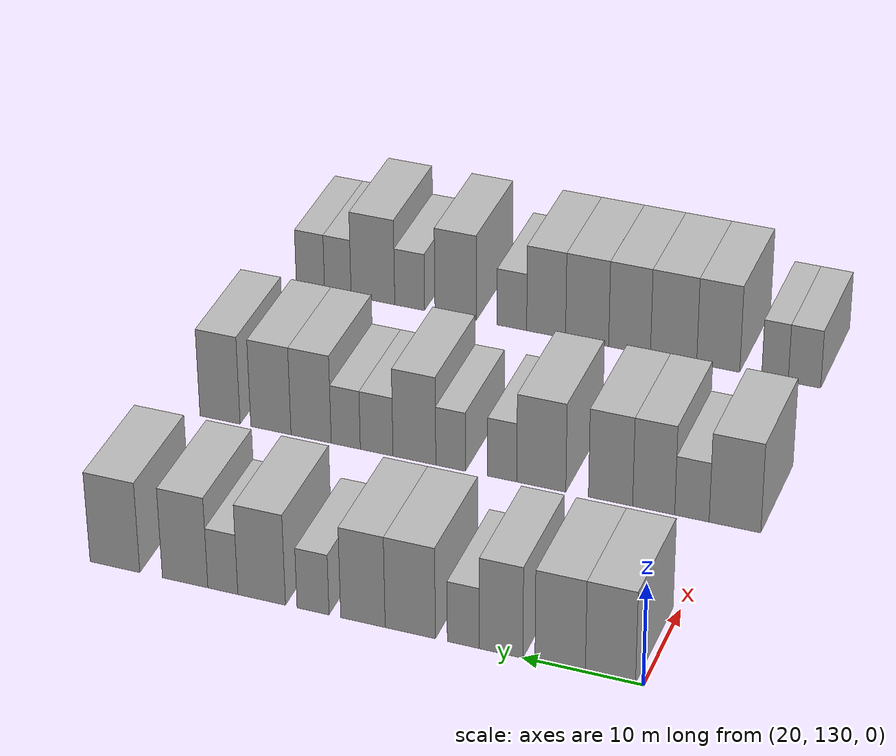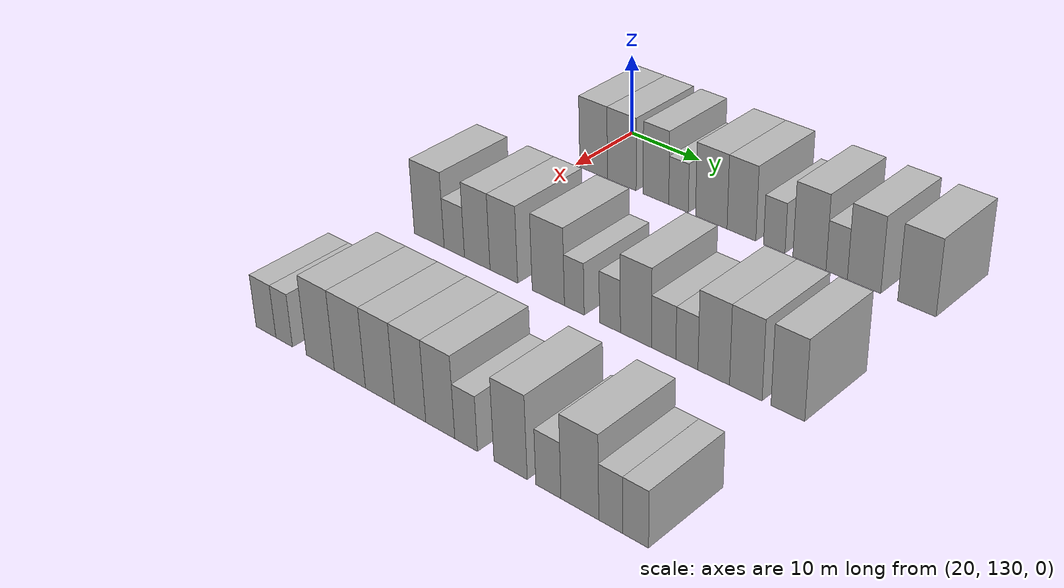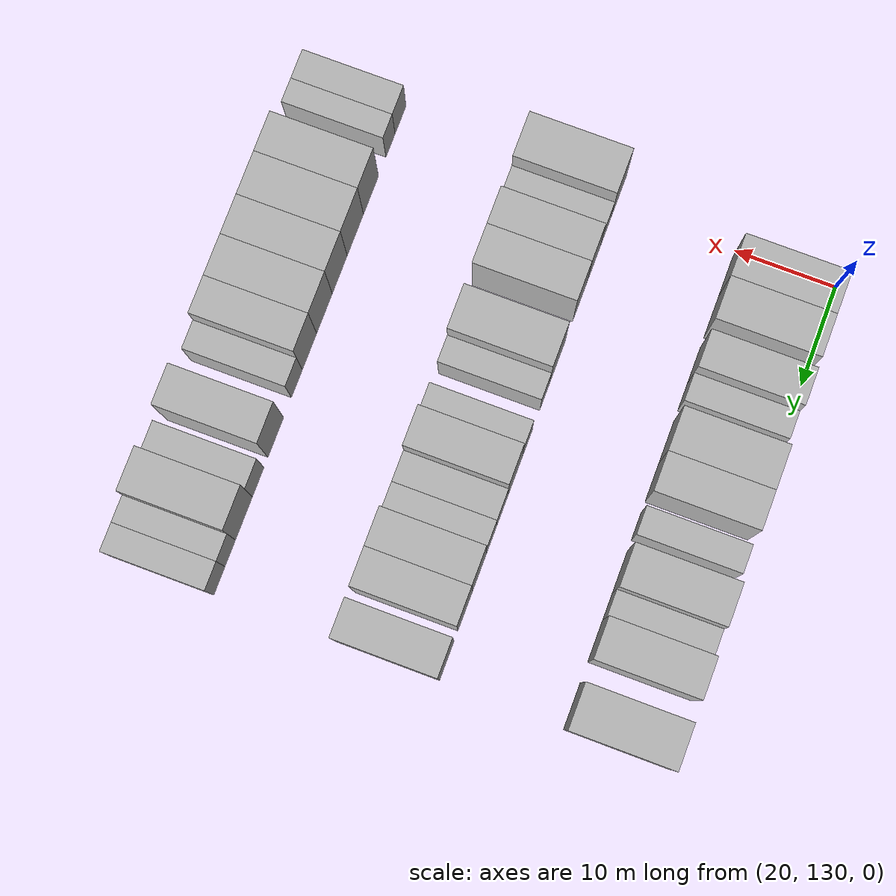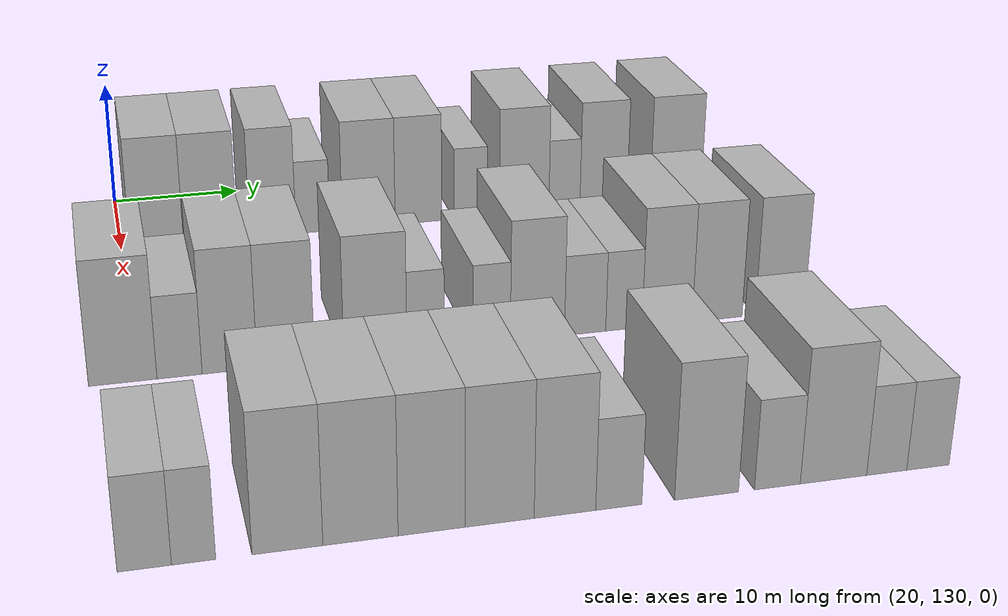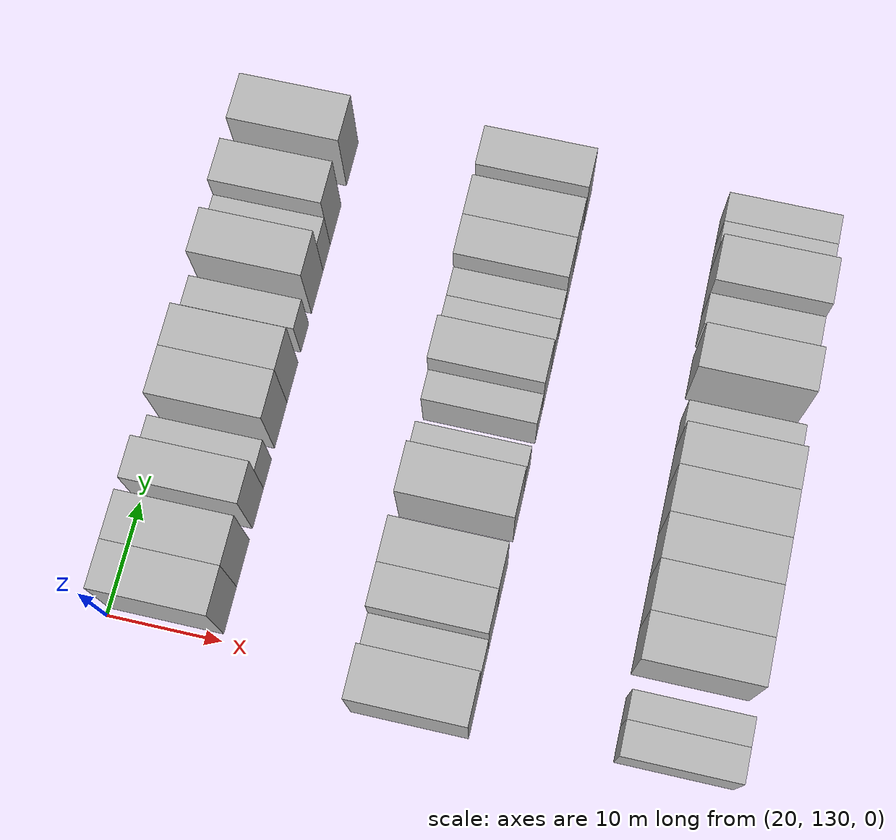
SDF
<sdf version="1.6">
 <world name="default">
  <model name="building_127">
   <static>1</static>
   <pose>25.0000 132.7111 0 0.000000 0.000000 0.000000</pose>
   <link name="link">
    <pose>0 0 4.50 0 0 0</pose>
    <collision name="collision"><geometry><box><size>10.0000 4.1137 9.0000</size></box></geometry></collision>
    <visual name="visual">
     <cast_shadows>0</cast_shadows>
     <geometry><box><size>10.0000 4.1137 9.0000</size></box></geometry>
     <material>
      <script>
       <uri>model://HANNAS_wall/materials/scripts</uri>
       <uri>model://HANNAS_wall/materials/textures</uri>
       <name>vrc/HANNAS_wall</name>
      </script>
     </material>
    </visual>
   </link>
  </model>
  <model name="building_128">
   <static>1</static>
   <pose>25.0000 136.8517 0 0.000000 0.000000 0.000000</pose>
   <link name="link">
    <pose>0 0 4.50 0 0 0</pose>
    <collision name="collision"><geometry><box><size>10.0000 4.1676 9.0000</size></box></geometry></collision>
    <visual name="visual">
     <cast_shadows>0</cast_shadows>
     <geometry><box><size>10.0000 4.1676 9.0000</size></box></geometry>
     <material>
      <script>
       <uri>model://HANNAS_wall/materials/scripts</uri>
       <uri>model://HANNAS_wall/materials/textures</uri>
       <name>vrc/HANNAS_wall</name>
      </script>
     </material>
    </visual>
   </link>
  </model>
  <model name="building_129">
   <static>1</static>
   <pose>25.0000 141.7489 0 0.000000 0.000000 0.000000</pose>
   <link name="link">
    <pose>0 0 4.50 0 0 0</pose>
    <collision name="collision"><geometry><box><size>10.0000 3.6270 9.0000</size></box></geometry></collision>
    <visual name="visual">
     <cast_shadows>0</cast_shadows>
     <geometry><box><size>10.0000 3.6270 9.0000</size></box></geometry>
     <material>
      <script>
       <uri>model://HANNAS_wall/materials/scripts</uri>
       <uri>model://HANNAS_wall/materials/textures</uri>
       <name>vrc/HANNAS_wall</name>
      </script>
     </material>
    </visual>
   </link>
  </model>
  <model name="building_130">
   <static>1</static>
   <pose>25.0000 144.9116 0 0.000000 0.000000 0.000000</pose>
   <link name="link">
    <pose>0 0 3.00 0 0 0</pose>
    <collision name="collision"><geometry><box><size>10.0000 2.6984 6.0000</size></box></geometry></collision>
    <visual name="visual">
     <cast_shadows>0</cast_shadows>
     <geometry><box><size>10.0000 2.6984 6.0000</size></box></geometry>
     <material>
      <script>
       <uri>model://HANNAS_wall/materials/scripts</uri>
       <uri>model://HANNAS_wall/materials/textures</uri>
       <name>vrc/HANNAS_wall</name>
      </script>
     </material>
    </visual>
   </link>
  </model>
  <model name="building_131">
   <static>1</static>
   <pose>25.0000 149.3931 0 0.000000 0.000000 0.000000</pose>
   <link name="link">
    <pose>0 0 4.50 0 0 0</pose>
    <collision name="collision"><geometry><box><size>10.0000 4.2646 9.0000</size></box></geometry></collision>
    <visual name="visual">
     <cast_shadows>0</cast_shadows>
     <geometry><box><size>10.0000 4.2646 9.0000</size></box></geometry>
     <material>
      <script>
       <uri>model://HANNAS_wall/materials/scripts</uri>
       <uri>model://HANNAS_wall/materials/textures</uri>
       <name>vrc/HANNAS_wall</name>
      </script>
     </material>
    </visual>
   </link>
  </model>
  <model name="building_132">
   <static>1</static>
   <pose>25.0000 153.4267 0 0.000000 0.000000 0.000000</pose>
   <link name="link">
    <pose>0 0 4.50 0 0 0</pose>
    <collision name="collision"><geometry><box><size>10.0000 3.8026 9.0000</size></box></geometry></collision>
    <visual name="visual">
     <cast_shadows>0</cast_shadows>
     <geometry><box><size>10.0000 3.8026 9.0000</size></box></geometry>
     <material>
      <script>
       <uri>model://HANNAS_wall/materials/scripts</uri>
       <uri>model://HANNAS_wall/materials/textures</uri>
       <name>vrc/HANNAS_wall</name>
      </script>
     </material>
    </visual>
   </link>
  </model>
  <model name="building_133">
   <static>1</static>
   <pose>25.0000 157.7071 0 0.000000 0.000000 0.000000</pose>
   <link name="link">
    <pose>0 0 3.00 0 0 0</pose>
    <collision name="collision"><geometry><box><size>10.0000 2.7583 6.0000</size></box></geometry></collision>
    <visual name="visual">
     <cast_shadows>0</cast_shadows>
     <geometry><box><size>10.0000 2.7583 6.0000</size></box></geometry>
     <material>
      <script>
       <uri>model://HANNAS_wall/materials/scripts</uri>
       <uri>model://HANNAS_wall/materials/textures</uri>
       <name>vrc/HANNAS_wall</name>
      </script>
     </material>
    </visual>
   </link>
  </model>
  <model name="building_134">
   <static>1</static>
   <pose>25.0000 162.1594 0 0.000000 0.000000 0.000000</pose>
   <link name="link">
    <pose>0 0 4.50 0 0 0</pose>
    <collision name="collision"><geometry><box><size>10.0000 4.1462 9.0000</size></box></geometry></collision>
    <visual name="visual">
     <cast_shadows>0</cast_shadows>
     <geometry><box><size>10.0000 4.1462 9.0000</size></box></geometry>
     <material>
      <script>
       <uri>model://HANNAS_wall/materials/scripts</uri>
       <uri>model://HANNAS_wall/materials/textures</uri>
       <name>vrc/HANNAS_wall</name>
      </script>
     </material>
    </visual>
   </link>
  </model>
  <model name="building_135">
   <static>1</static>
   <pose>25.0000 165.5441 0 0.000000 0.000000 0.000000</pose>
   <link name="link">
    <pose>0 0 3.00 0 0 0</pose>
    <collision name="collision"><geometry><box><size>10.0000 2.6232 6.0000</size></box></geometry></collision>
    <visual name="visual">
     <cast_shadows>0</cast_shadows>
     <geometry><box><size>10.0000 2.6232 6.0000</size></box></geometry>
     <material>
      <script>
       <uri>model://HANNAS_wall/materials/scripts</uri>
       <uri>model://HANNAS_wall/materials/textures</uri>
       <name>vrc/HANNAS_wall</name>
      </script>
     </material>
    </visual>
   </link>
  </model>
  <model name="building_136">
   <static>1</static>
   <pose>25.0000 168.8602 0 0.000000 0.000000 0.000000</pose>
   <link name="link">
    <pose>0 0 4.50 0 0 0</pose>
    <collision name="collision"><geometry><box><size>10.0000 4.0091 9.0000</size></box></geometry></collision>
    <visual name="visual">
     <cast_shadows>0</cast_shadows>
     <geometry><box><size>10.0000 4.0091 9.0000</size></box></geometry>
     <material>
      <script>
       <uri>model://HANNAS_wall/materials/scripts</uri>
       <uri>model://HANNAS_wall/materials/textures</uri>
       <name>vrc/HANNAS_wall</name>
      </script>
     </material>
    </visual>
   </link>
  </model>
  <model name="building_137">
   <static>1</static>
   <pose>25.0000 175.0820 0 0.000000 0.000000 0.000000</pose>
   <link name="link">
    <pose>0 0 4.50 0 0 0</pose>
    <collision name="collision"><geometry><box><size>10.0000 4.4344 9.0000</size></box></geometry></collision>
    <visual name="visual">
     <cast_shadows>0</cast_shadows>
     <geometry><box><size>10.0000 4.4344 9.0000</size></box></geometry>
     <material>
      <script>
       <uri>model://HANNAS_wall/materials/scripts</uri>
       <uri>model://HANNAS_wall/materials/textures</uri>
       <name>vrc/HANNAS_wall</name>
      </script>
     </material>
    </visual>
   </link>
  </model>
  <model name="building_317">
   <static>1</static>
   <pose>47.0000 128.9663 0 0.000000 0.000000 0.000000</pose>
   <link name="link">
    <pose>0 0 4.50 0 0 0</pose>
    <collision name="collision"><geometry><box><size>10.0000 4.4516 9.0000</size></box></geometry></collision>
    <visual name="visual">
     <cast_shadows>0</cast_shadows>
     <geometry><box><size>10.0000 4.4516 9.0000</size></box></geometry>
     <material>
      <script>
       <uri>model://HANNAS_wall/materials/scripts</uri>
       <uri>model://HANNAS_wall/materials/textures</uri>
       <name>vrc/HANNAS_wall</name>
      </script>
     </material>
    </visual>
   </link>
  </model>
  <model name="building_318">
   <static>1</static>
   <pose>47.0000 132.6814 0 0.000000 0.000000 0.000000</pose>
   <link name="link">
    <pose>0 0 3.00 0 0 0</pose>
    <collision name="collision"><geometry><box><size>10.0000 2.9786 6.0000</size></box></geometry></collision>
    <visual name="visual">
     <cast_shadows>0</cast_shadows>
     <geometry><box><size>10.0000 2.9786 6.0000</size></box></geometry>
     <material>
      <script>
       <uri>model://HANNAS_wall/materials/scripts</uri>
       <uri>model://HANNAS_wall/materials/textures</uri>
       <name>vrc/HANNAS_wall</name>
      </script>
     </material>
    </visual>
   </link>
  </model>
  <model name="building_319">
   <static>1</static>
   <pose>47.0000 136.0028 0 0.000000 0.000000 0.000000</pose>
   <link name="link">
    <pose>0 0 4.50 0 0 0</pose>
    <collision name="collision"><geometry><box><size>10.0000 3.6643 9.0000</size></box></geometry></collision>
    <visual name="visual">
     <cast_shadows>0</cast_shadows>
     <geometry><box><size>10.0000 3.6643 9.0000</size></box></geometry>
     <material>
      <script>
       <uri>model://HANNAS_wall/materials/scripts</uri>
       <uri>model://HANNAS_wall/materials/textures</uri>
       <name>vrc/HANNAS_wall</name>
      </script>
     </material>
    </visual>
   </link>
  </model>
  <model name="building_320">
   <static>1</static>
   <pose>47.0000 139.7730 0 0.000000 0.000000 0.000000</pose>
   <link name="link">
    <pose>0 0 4.50 0 0 0</pose>
    <collision name="collision"><geometry><box><size>10.0000 3.8761 9.0000</size></box></geometry></collision>
    <visual name="visual">
     <cast_shadows>0</cast_shadows>
     <geometry><box><size>10.0000 3.8761 9.0000</size></box></geometry>
     <material>
      <script>
       <uri>model://HANNAS_wall/materials/scripts</uri>
       <uri>model://HANNAS_wall/materials/textures</uri>
       <name>vrc/HANNAS_wall</name>
      </script>
     </material>
    </visual>
   </link>
  </model>
  <model name="building_321">
   <static>1</static>
   <pose>47.0000 145.8849 0 0.000000 0.000000 0.000000</pose>
   <link name="link">
    <pose>0 0 4.50 0 0 0</pose>
    <collision name="collision"><geometry><box><size>10.0000 4.3477 9.0000</size></box></geometry></collision>
    <visual name="visual">
     <cast_shadows>0</cast_shadows>
     <geometry><box><size>10.0000 4.3477 9.0000</size></box></geometry>
     <material>
      <script>
       <uri>model://HANNAS_wall/materials/scripts</uri>
       <uri>model://HANNAS_wall/materials/textures</uri>
       <name>vrc/HANNAS_wall</name>
      </script>
     </material>
    </visual>
   </link>
  </model>
  <model name="building_322">
   <static>1</static>
   <pose>47.0000 149.3601 0 0.000000 0.000000 0.000000</pose>
   <link name="link">
    <pose>0 0 3.00 0 0 0</pose>
    <collision name="collision"><geometry><box><size>10.0000 2.6026 6.0000</size></box></geometry></collision>
    <visual name="visual">
     <cast_shadows>0</cast_shadows>
     <geometry><box><size>10.0000 2.6026 6.0000</size></box></geometry>
     <material>
      <script>
       <uri>model://HANNAS_wall/materials/scripts</uri>
       <uri>model://HANNAS_wall/materials/textures</uri>
       <name>vrc/HANNAS_wall</name>
      </script>
     </material>
    </visual>
   </link>
  </model>
  <model name="building_323">
   <static>1</static>
   <pose>47.0000 153.9944 0 0.000000 0.000000 0.000000</pose>
   <link name="link">
    <pose>0 0 3.00 0 0 0</pose>
    <collision name="collision"><geometry><box><size>10.0000 2.6661 6.0000</size></box></geometry></collision>
    <visual name="visual">
     <cast_shadows>0</cast_shadows>
     <geometry><box><size>10.0000 2.6661 6.0000</size></box></geometry>
     <material>
      <script>
       <uri>model://HANNAS_wall/materials/scripts</uri>
       <uri>model://HANNAS_wall/materials/textures</uri>
       <name>vrc/HANNAS_wall</name>
      </script>
     </material>
    </visual>
   </link>
  </model>
  <model name="building_324">
   <static>1</static>
   <pose>47.0000 157.2693 0 0.000000 0.000000 0.000000</pose>
   <link name="link">
    <pose>0 0 4.50 0 0 0</pose>
    <collision name="collision"><geometry><box><size>10.0000 3.8836 9.0000</size></box></geometry></collision>
    <visual name="visual">
     <cast_shadows>0</cast_shadows>
     <geometry><box><size>10.0000 3.8836 9.0000</size></box></geometry>
     <material>
      <script>
       <uri>model://HANNAS_wall/materials/scripts</uri>
       <uri>model://HANNAS_wall/materials/textures</uri>
       <name>vrc/HANNAS_wall</name>
      </script>
     </material>
    </visual>
   </link>
  </model>
  <model name="building_325">
   <static>1</static>
   <pose>47.0000 160.7059 0 0.000000 0.000000 0.000000</pose>
   <link name="link">
    <pose>0 0 3.00 0 0 0</pose>
    <collision name="collision"><geometry><box><size>10.0000 2.9897 6.0000</size></box></geometry></collision>
    <visual name="visual">
     <cast_shadows>0</cast_shadows>
     <geometry><box><size>10.0000 2.9897 6.0000</size></box></geometry>
     <material>
      <script>
       <uri>model://HANNAS_wall/materials/scripts</uri>
       <uri>model://HANNAS_wall/materials/textures</uri>
       <name>vrc/HANNAS_wall</name>
      </script>
     </material>
    </visual>
   </link>
  </model>
  <model name="building_326">
   <static>1</static>
   <pose>47.0000 163.5340 0 0.000000 0.000000 0.000000</pose>
   <link name="link">
    <pose>0 0 3.00 0 0 0</pose>
    <collision name="collision"><geometry><box><size>10.0000 2.6665 6.0000</size></box></geometry></collision>
    <visual name="visual">
     <cast_shadows>0</cast_shadows>
     <geometry><box><size>10.0000 2.6665 6.0000</size></box></geometry>
     <material>
      <script>
       <uri>model://HANNAS_wall/materials/scripts</uri>
       <uri>model://HANNAS_wall/materials/textures</uri>
       <name>vrc/HANNAS_wall</name>
      </script>
     </material>
    </visual>
   </link>
  </model>
  <model name="building_327">
   <static>1</static>
   <pose>47.0000 166.7240 0 0.000000 0.000000 0.000000</pose>
   <link name="link">
    <pose>0 0 4.50 0 0 0</pose>
    <collision name="collision"><geometry><box><size>10.0000 3.7134 9.0000</size></box></geometry></collision>
    <visual name="visual">
     <cast_shadows>0</cast_shadows>
     <geometry><box><size>10.0000 3.7134 9.0000</size></box></geometry>
     <material>
      <script>
       <uri>model://HANNAS_wall/materials/scripts</uri>
       <uri>model://HANNAS_wall/materials/textures</uri>
       <name>vrc/HANNAS_wall</name>
      </script>
     </material>
    </visual>
   </link>
  </model>
  <model name="building_328">
   <static>1</static>
   <pose>47.0000 170.4507 0 0.000000 0.000000 0.000000</pose>
   <link name="link">
    <pose>0 0 4.50 0 0 0</pose>
    <collision name="collision"><geometry><box><size>10.0000 3.7400 9.0000</size></box></geometry></collision>
    <visual name="visual">
     <cast_shadows>0</cast_shadows>
     <geometry><box><size>10.0000 3.7400 9.0000</size></box></geometry>
     <material>
      <script>
       <uri>model://HANNAS_wall/materials/scripts</uri>
       <uri>model://HANNAS_wall/materials/textures</uri>
       <name>vrc/HANNAS_wall</name>
      </script>
     </material>
    </visual>
   </link>
  </model>
  <model name="building_329">
   <static>1</static>
   <pose>47.0000 175.1988 0 0.000000 0.000000 0.000000</pose>
   <link name="link">
    <pose>0 0 4.50 0 0 0</pose>
    <collision name="collision"><geometry><box><size>10.0000 3.7563 9.0000</size></box></geometry></collision>
    <visual name="visual">
     <cast_shadows>0</cast_shadows>
     <geometry><box><size>10.0000 3.7563 9.0000</size></box></geometry>
     <material>
      <script>
       <uri>model://HANNAS_wall/materials/scripts</uri>
       <uri>model://HANNAS_wall/materials/textures</uri>
       <name>vrc/HANNAS_wall</name>
      </script>
     </material>
    </visual>
   </link>
  </model>
  <model name="building_500">
   <static>1</static>
   <pose>69.0000 128.9819 0 0.000000 0.000000 0.000000</pose>
   <link name="link">
    <pose>0 0 3.00 0 0 0</pose>
    <collision name="collision"><geometry><box><size>10.0000 2.9438 6.0000</size></box></geometry></collision>
    <visual name="visual">
     <cast_shadows>0</cast_shadows>
     <geometry><box><size>10.0000 2.9438 6.0000</size></box></geometry>
     <material>
      <script>
       <uri>model://HANNAS_wall/materials/scripts</uri>
       <uri>model://HANNAS_wall/materials/textures</uri>
       <name>vrc/HANNAS_wall</name>
      </script>
     </material>
    </visual>
   </link>
  </model>
  <model name="building_501">
   <static>1</static>
   <pose>69.0000 131.6644 0 0.000000 0.000000 0.000000</pose>
   <link name="link">
    <pose>0 0 3.00 0 0 0</pose>
    <collision name="collision"><geometry><box><size>10.0000 2.4213 6.0000</size></box></geometry></collision>
    <visual name="visual">
     <cast_shadows>0</cast_shadows>
     <geometry><box><size>10.0000 2.4213 6.0000</size></box></geometry>
     <material>
      <script>
       <uri>model://HANNAS_wall/materials/scripts</uri>
       <uri>model://HANNAS_wall/materials/textures</uri>
       <name>vrc/HANNAS_wall</name>
      </script>
     </material>
    </visual>
   </link>
  </model>
  <model name="building_502">
   <static>1</static>
   <pose>69.0000 136.8580 0 0.000000 0.000000 0.000000</pose>
   <link name="link">
    <pose>0 0 4.50 0 0 0</pose>
    <collision name="collision"><geometry><box><size>10.0000 3.9658 9.0000</size></box></geometry></collision>
    <visual name="visual">
     <cast_shadows>0</cast_shadows>
     <geometry><box><size>10.0000 3.9658 9.0000</size></box></geometry>
     <material>
      <script>
       <uri>model://HANNAS_wall/materials/scripts</uri>
       <uri>model://HANNAS_wall/materials/textures</uri>
       <name>vrc/HANNAS_wall</name>
      </script>
     </material>
    </visual>
   </link>
  </model>
  <model name="building_503">
   <static>1</static>
   <pose>69.0000 140.9819 0 0.000000 0.000000 0.000000</pose>
   <link name="link">
    <pose>0 0 4.50 0 0 0</pose>
    <collision name="collision"><geometry><box><size>10.0000 4.2822 9.0000</size></box></geometry></collision>
    <visual name="visual">
     <cast_shadows>0</cast_shadows>
     <geometry><box><size>10.0000 4.2822 9.0000</size></box></geometry>
     <material>
      <script>
       <uri>model://HANNAS_wall/materials/scripts</uri>
       <uri>model://HANNAS_wall/materials/textures</uri>
       <name>vrc/HANNAS_wall</name>
      </script>
     </material>
    </visual>
   </link>
  </model>
  <model name="building_504">
   <static>1</static>
   <pose>69.0000 145.0707 0 0.000000 0.000000 0.000000</pose>
   <link name="link">
    <pose>0 0 4.50 0 0 0</pose>
    <collision name="collision"><geometry><box><size>10.0000 3.8954 9.0000</size></box></geometry></collision>
    <visual name="visual">
     <cast_shadows>0</cast_shadows>
     <geometry><box><size>10.0000 3.8954 9.0000</size></box></geometry>
     <material>
      <script>
       <uri>model://HANNAS_wall/materials/scripts</uri>
       <uri>model://HANNAS_wall/materials/textures</uri>
       <name>vrc/HANNAS_wall</name>
      </script>
     </material>
    </visual>
   </link>
  </model>
  <model name="building_505">
   <static>1</static>
   <pose>69.0000 149.0413 0 0.000000 0.000000 0.000000</pose>
   <link name="link">
    <pose>0 0 4.50 0 0 0</pose>
    <collision name="collision"><geometry><box><size>10.0000 4.0457 9.0000</size></box></geometry></collision>
    <visual name="visual">
     <cast_shadows>0</cast_shadows>
     <geometry><box><size>10.0000 4.0457 9.0000</size></box></geometry>
     <material>
      <script>
       <uri>model://HANNAS_wall/materials/scripts</uri>
       <uri>model://HANNAS_wall/materials/textures</uri>
       <name>vrc/HANNAS_wall</name>
      </script>
     </material>
    </visual>
   </link>
  </model>
  <model name="building_506">
   <static>1</static>
   <pose>69.0000 152.9022 0 0.000000 0.000000 0.000000</pose>
   <link name="link">
    <pose>0 0 4.50 0 0 0</pose>
    <collision name="collision"><geometry><box><size>10.0000 3.6762 9.0000</size></box></geometry></collision>
    <visual name="visual">
     <cast_shadows>0</cast_shadows>
     <geometry><box><size>10.0000 3.6762 9.0000</size></box></geometry>
     <material>
      <script>
       <uri>model://HANNAS_wall/materials/scripts</uri>
       <uri>model://HANNAS_wall/materials/textures</uri>
       <name>vrc/HANNAS_wall</name>
      </script>
     </material>
    </visual>
   </link>
  </model>
  <model name="building_507">
   <static>1</static>
   <pose>69.0000 156.1415 0 0.000000 0.000000 0.000000</pose>
   <link name="link">
    <pose>0 0 3.00 0 0 0</pose>
    <collision name="collision"><geometry><box><size>10.0000 2.8024 6.0000</size></box></geometry></collision>
    <visual name="visual">
     <cast_shadows>0</cast_shadows>
     <geometry><box><size>10.0000 2.8024 6.0000</size></box></geometry>
     <material>
      <script>
       <uri>model://HANNAS_wall/materials/scripts</uri>
       <uri>model://HANNAS_wall/materials/textures</uri>
       <name>vrc/HANNAS_wall</name>
      </script>
     </material>
    </visual>
   </link>
  </model>
  <model name="building_508">
   <static>1</static>
   <pose>69.0000 161.5246 0 0.000000 0.000000 0.000000</pose>
   <link name="link">
    <pose>0 0 4.50 0 0 0</pose>
    <collision name="collision"><geometry><box><size>10.0000 3.9639 9.0000</size></box></geometry></collision>
    <visual name="visual">
     <cast_shadows>0</cast_shadows>
     <geometry><box><size>10.0000 3.9639 9.0000</size></box></geometry>
     <material>
      <script>
       <uri>model://HANNAS_wall/materials/scripts</uri>
       <uri>model://HANNAS_wall/materials/textures</uri>
       <name>vrc/HANNAS_wall</name>
      </script>
     </material>
    </visual>
   </link>
  </model>
  <model name="building_509">
   <static>1</static>
   <pose>69.0000 165.9516 0 0.000000 0.000000 0.000000</pose>
   <link name="link">
    <pose>0 0 3.00 0 0 0</pose>
    <collision name="collision"><geometry><box><size>10.0000 2.8901 6.0000</size></box></geometry></collision>
    <visual name="visual">
     <cast_shadows>0</cast_shadows>
     <geometry><box><size>10.0000 2.8901 6.0000</size></box></geometry>
     <material>
      <script>
       <uri>model://HANNAS_wall/materials/scripts</uri>
       <uri>model://HANNAS_wall/materials/textures</uri>
       <name>vrc/HANNAS_wall</name>
      </script>
     </material>
    </visual>
   </link>
  </model>
  <model name="building_510">
   <static>1</static>
   <pose>69.0000 169.5228 0 0.000000 0.000000 0.000000</pose>
   <link name="link">
    <pose>0 0 4.50 0 0 0</pose>
    <collision name="collision"><geometry><box><size>10.0000 4.2521 9.0000</size></box></geometry></collision>
    <visual name="visual">
     <cast_shadows>0</cast_shadows>
     <geometry><box><size>10.0000 4.2521 9.0000</size></box></geometry>
     <material>
      <script>
       <uri>model://HANNAS_wall/materials/scripts</uri>
       <uri>model://HANNAS_wall/materials/textures</uri>
       <name>vrc/HANNAS_wall</name>
      </script>
     </material>
    </visual>
   </link>
  </model>
  <model name="building_511">
   <static>1</static>
   <pose>69.0000 172.9485 0 0.000000 0.000000 0.000000</pose>
   <link name="link">
    <pose>0 0 3.00 0 0 0</pose>
    <collision name="collision"><geometry><box><size>10.0000 2.5994 6.0000</size></box></geometry></collision>
    <visual name="visual">
     <cast_shadows>0</cast_shadows>
     <geometry><box><size>10.0000 2.5994 6.0000</size></box></geometry>
     <material>
      <script>
       <uri>model://HANNAS_wall/materials/scripts</uri>
       <uri>model://HANNAS_wall/materials/textures</uri>
       <name>vrc/HANNAS_wall</name>
      </script>
     </material>
    </visual>
   </link>
  </model>
  <model name="building_512">
   <static>1</static>
   <pose>69.0000 175.6344 0 0.000000 0.000000 0.000000</pose>
   <link name="link">
    <pose>0 0 3.00 0 0 0</pose>
    <collision name="collision"><geometry><box><size>10.0000 2.7723 6.0000</size></box></geometry></collision>
    <visual name="visual">
     <cast_shadows>0</cast_shadows>
     <geometry><box><size>10.0000 2.7723 6.0000</size></box></geometry>
     <material>
      <script>
       <uri>model://HANNAS_wall/materials/scripts</uri>
       <uri>model://HANNAS_wall/materials/textures</uri>
       <name>vrc/HANNAS_wall</name>
      </script>
     </material>
    </visual>
   </link>
  </model>
 </world>
</sdf>
